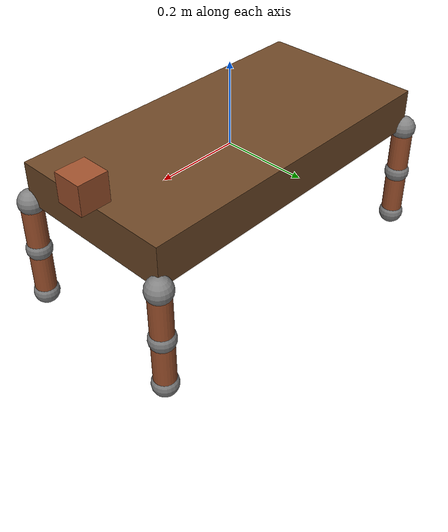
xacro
<?xml version="1.0"?>
<robot name="sample-quadruped2" xmlns:xacro="http://www.ros.org/wiki/xacro">

  <!-- Include materials -->
  <material name="TorsoBrown">
    <color rgba="0.43 0.28 0.15 1.0"/>
  </material>
  <material name="Red">
    <color rgba="0.627 0.322 0.176 1.0"/>
  </material>
  <material name="Blue">
    <color rgba="0.0 0.0 0.8 1.0"/>
  </material>
  <material name="Blue2">
    <color rgba="0.627 0.322 0.176 1.0"/>
  </material>
  <material name="Green">
    <color rgba="0.0 0.9 0.0 1.0"/>
  </material>
  <material name="Gray">
    <color rgba="0.5 0.5 0.5 1.0"/>
  </material>

  <!-- Constants -->
  <property name="M_PI" value="3.14159"/>
  <!-- Lengths for the limbs -->
  <property name="lleg1_len" value="0.125" />
  <property name="lleg2_len" value="0.125" />
  <property name="lleg_width" value="0.025" />
  <property name="lleg_ball_width" value="0.03" />
  <!-- Lengths for the torso -->
  <property name="torso_xlen" value="0.4"/>
  <property name="torso_ylen" value="0.2"/>
  <property name="torso_zlen" value="0.05"/>
  <!-- Size of the pseudo-head -->
  <property name="phead_side" value="0.07"/>

  <!--        TORAX LINK: where the arms/legs are placed            -->

  <link name="base_link" />
  <joint name="base_link_fixedjoint" type="fixed">
    <parent link="base_link"/>
    <child link="torso"/>
    <origin rpy="0 0 0" xyz="0 0 0"/>
    <axis xyz="0 0 0"/>
  </joint>

  <link name="torso">
    <visual>
      <origin xyz=" 0 0 0"  rpy="0 0 0"/>
      <geometry>
        <box size="${torso_xlen*2} ${torso_ylen*2} ${torso_zlen*2}"/>
      </geometry>
      <material name="TorsoBrown" />
    </visual>
  </link>

  <!--        SQUARE THAT INDICATES THE FRONT                       -->
  <joint name="pseudo_head_joint" type="fixed">
    <parent link="torso"/>
    <child link="pseudo_head"/>
    <origin rpy="0 0 0" xyz="${torso_xlen} 0 ${torso_zlen+phead_side/2}"/>
    <axis xyz="0 0 0"/>
  </joint>
  <link name="pseudo_head">
    <visual>
      <origin xyz="0 0 0" rpy="0 0 0" />
      <geometry>
        <box size="${phead_side} ${phead_side} ${phead_side}"/>
      </geometry>
      <material name="Red" />
    </visual>
  </link>

  <!--        FRONT RIGHT LIMB                                      -->

  <joint name="front_right_j1" type="revolute">
    <parent link="torso"/>
    <child link="lfront_right0"/>
    <origin xyz="${torso_xlen} -${torso_ylen} -${torso_zlen}" rpy="0 0 0" />
    <axis xyz="1 0 0" />
    <limit effort="300" velocity="1" lower="-1.4" upper="1.4"/>
  </joint>

  <link name="lfront_right0">
    <visual>
      <origin xyz="0 0 0" rpy="0 0 0" />
      <geometry>
        <sphere radius="${lleg_ball_width}"/>
      </geometry>
      <material name="Gray" />
    </visual>
  </link>

  <joint name="front_right_j2" type="revolute">
    <parent link="lfront_right0"/>
    <child link="lfront_right1"/>
    <origin xyz="0 0 0" rpy="0 0 0" />
    <axis xyz="0 1 0" />
    <limit effort="300" velocity="1" lower="-1.4" upper="1.4"/>
  </joint>

  <link name="lfront_right1" >
    <visual>
      <origin xyz="0 0 -${lleg1_len/2}" rpy="0 0 0" />
      <geometry>
        <cylinder radius="${lleg_width}" length="${lleg1_len}"/>
      </geometry>
      <material name="Red" />
    </visual>
  </link>

  <joint name="front_right_j3" type="revolute">
    <parent link="lfront_right1"/>
    <child link="lfront_right2"/>
    <origin xyz="0 0 -${lleg1_len}" rpy="0 0 0" />
    <axis xyz="0 1 0" />
    <limit effort="300" velocity="1" lower="-2.5" upper="2.5"/>
  </joint>

  <link name="lfront_right2" >
    <visual>
      <origin xyz="0 0 -${lleg2_len/2}" rpy="0 0 0" />
      <geometry>
        <cylinder radius="${lleg_width}" length="${lleg2_len}"/>
      </geometry>
      <material name="Blue2" />
    </visual>
  </link>

  <!-- Balls located at joint positions (only for visual purposes) -->
  <joint name="front_right1_ball_joint" type="fixed">
    <parent link="lfront_right1"/>
    <child link="lfront_right1_ball"/>
    <origin rpy="0 0 0" xyz="0 0 0"/>
    <axis xyz="0 0 0"/>
  </joint>
  <link name="lfront_right1_ball">
    <visual>
      <origin xyz="0 0 -${lleg1_len}" rpy="0 0 0" />
      <geometry>
        <sphere radius="${lleg_ball_width}"/>
      </geometry>
      <material name="Gray" />
    </visual>
  </link>

  <joint name="front_right2_ball_joint" type="fixed">
    <parent link="lfront_right2"/>
    <child link="lfront_right2_ball"/>
    <origin rpy="0 0 0" xyz="0 0 0"/>
    <axis xyz="0 0 0"/>
  </joint>
  <link name="lfront_right2_ball">
    <visual>
      <origin xyz="0 0 -${lleg2_len}" rpy="0 0 0" />
      <geometry>
        <sphere radius="${lleg_ball_width}"/>
      </geometry>
      <material name="Gray" />
    </visual>
  </link>

  <!--        FRONT LEFT LIMB                                      -->

  <joint name="front_left_j1" type="revolute">
    <parent link="torso"/>
    <child link="lfront_left0"/>
    <origin xyz="${torso_xlen} ${torso_ylen} -${torso_zlen}" rpy="0 0 0" />
    <axis xyz="1 0 0" />
    <limit effort="300" velocity="1" lower="-1.4" upper="1.4"/>
  </joint>

  <link name="lfront_left0">
    <visual>
      <origin xyz="0 0 0" rpy="0 0 0" />
      <geometry>
        <sphere radius="${lleg_ball_width}"/>
      </geometry>
      <material name="Gray" />
    </visual>
  </link>

  <joint name="front_left_j2" type="revolute">
    <parent link="lfront_left0"/>
    <child link="lfront_left1"/>
    <origin xyz="0 0 0" rpy="0 0 0" />
    <axis xyz="0 1 0" />
    <limit effort="300" velocity="1" lower="-1.4" upper="1.4"/>
  </joint>

  <link name="lfront_left1" >
    <visual>
      <origin xyz="0 0 -${lleg1_len/2}" rpy="0 0 0" />
      <geometry>
        <cylinder radius="${lleg_width}" length="${lleg1_len}"/>
      </geometry>
      <material name="Red" />
    </visual>
  </link>

  <joint name="front_left_j3" type="revolute">
    <parent link="lfront_left1"/>
    <child link="lfront_left2"/>
    <origin xyz="0 0 -${lleg1_len}" rpy="0 0 0" />
    <axis xyz="0 1 0" />
    <limit effort="300" velocity="1" lower="-2.5" upper="2.5"/>
  </joint>

  <link name="lfront_left2" >
    <visual>
      <origin xyz="0 0 -${lleg2_len/2}" rpy="0 0 0" />
      <geometry>
        <cylinder radius="${lleg_width}" length="${lleg2_len}"/>
      </geometry>
      <material name="Blue2" />
    </visual>
  </link>

  <!-- Balls located at joint positions (only for visual purposes) -->
  <joint name="front_left1_ball_joint" type="fixed">
    <parent link="lfront_left1"/>
    <child link="lfront_left1_ball"/>
    <origin rpy="0 0 0" xyz="0 0 0"/>
    <axis xyz="0 0 0"/>
  </joint>
  <link name="lfront_left1_ball">
    <visual>
      <origin xyz="0 0 -${lleg1_len}" rpy="0 0 0" />
      <geometry>
        <sphere radius="${lleg_ball_width}"/>
      </geometry>
      <material name="Gray" />
    </visual>
  </link>

  <joint name="front_left2_ball_joint" type="fixed">
    <parent link="lfront_left2"/>
    <child link="lfront_left2_ball"/>
    <origin rpy="0 0 0" xyz="0 0 0"/>
    <axis xyz="0 0 0"/>
  </joint>
  <link name="lfront_left2_ball">
    <visual>
      <origin xyz="0 0 -${lleg2_len}" rpy="0 0 0" />
      <geometry>
        <sphere radius="${lleg_ball_width}"/>
      </geometry>
      <material name="Gray" />
    </visual>
  </link>

  <!--        REAR RIGHT LIMB                                       -->

  <joint name="rear_right_j1" type="revolute">
    <parent link="torso"/>
    <child link="lrear_right0"/>
    <origin xyz="-${torso_xlen} -${torso_ylen} -${torso_zlen}" rpy="0 0 0" />
    <axis xyz="1 0 0" />
    <limit effort="300" velocity="1" lower="-1.4" upper="1.4"/>
  </joint>

  <link name="lrear_right0">
    <visual>
      <origin xyz="0 0 0" rpy="0 0 0" />
      <geometry>
        <sphere radius="${lleg_ball_width}"/>
      </geometry>
      <material name="Gray" />
    </visual>
  </link>

  <joint name="rear_right_j2" type="revolute">
    <parent link="lrear_right0"/>
    <child link="lrear_right1"/>
    <origin xyz="0 0 0" rpy="0 0 0" />
    <axis xyz="0 1 0" />
    <limit effort="300" velocity="1" lower="-1.4" upper="1.4"/>
  </joint>

  <link name="lrear_right1" >
    <visual>
      <origin xyz="0 0 -${lleg1_len/2}" rpy="0 0 0" />
      <geometry>
        <cylinder radius="${lleg_width}" length="${lleg1_len}"/>
      </geometry>
      <material name="Red" />
    </visual>
  </link>

  <joint name="rear_right_j3" type="revolute">
    <parent link="lrear_right1"/>
    <child link="lrear_right2"/>
    <origin xyz="0 0 -${lleg1_len}" rpy="0 0 0" />
    <axis xyz="0 1 0" />
    <limit effort="300" velocity="1" lower="-2.5" upper="2.5"/>
  </joint>

  <link name="lrear_right2" >
    <visual>
      <origin xyz="0 0 -${lleg2_len/2}" rpy="0 0 0" />
      <geometry>
        <cylinder radius="${lleg_width}" length="${lleg2_len}"/>
      </geometry>
      <material name="Blue2" />
    </visual>
  </link>

  <!-- Balls located at joint positions (only for visual purposes) -->
  <joint name="rear_right1_ball_joint" type="fixed">
    <parent link="lrear_right1"/>
    <child link="lrear_right1_ball"/>
    <origin rpy="0 0 0" xyz="0 0 0"/>
    <axis xyz="0 0 0"/>
  </joint>
  <link name="lrear_right1_ball">
    <visual>
      <origin xyz="0 0 -${lleg1_len}" rpy="0 0 0" />
      <geometry>
        <sphere radius="${lleg_ball_width}"/>
      </geometry>
      <material name="Gray" />
    </visual>
  </link>

  <joint name="rear_right2_ball_joint" type="fixed">
    <parent link="lrear_right2"/>
    <child link="lrear_right2_ball"/>
    <origin rpy="0 0 0" xyz="0 0 0"/>
    <axis xyz="0 0 0"/>
  </joint>
  <link name="lrear_right2_ball">
    <visual>
      <origin xyz="0 0 -${lleg2_len}" rpy="0 0 0" />
      <geometry>
        <sphere radius="${lleg_ball_width}"/>
      </geometry>
      <material name="Gray" />
    </visual>
  </link>

  <!--        REAR LEFT LIMB                                        -->

  <joint name="rear_left_j1" type="revolute">
    <parent link="torso"/>
    <child link="lrear_left0"/>
    <origin xyz="-${torso_xlen} ${torso_ylen} -${torso_zlen}" rpy="0 0 0" />
    <axis xyz="1 0 0" />
    <limit effort="300" velocity="1" lower="-1.4" upper="1.4"/>
  </joint>

  <link name="lrear_left0">
    <visual>
      <origin xyz="0 0 0" rpy="0 0 0" />
      <geometry>
        <sphere radius="${lleg_ball_width}"/>
      </geometry>
      <material name="Gray" />
    </visual>
  </link>

  <joint name="rear_left_j2" type="revolute">
    <parent link="lrear_left0"/>
    <child link="lrear_left1"/>
    <origin xyz="0 0 0" rpy="0 0 0" />
    <axis xyz="0 1 0" />
    <limit effort="300" velocity="1" lower="-1.4" upper="1.4"/>
  </joint>

  <link name="lrear_left1" >
    <visual>
      <origin xyz="0 0 -${lleg1_len/2}" rpy="0 0 0" />
      <geometry>
        <cylinder radius="${lleg_width}" length="${lleg1_len}"/>
      </geometry>
      <material name="Red" />
    </visual>
  </link>

  <joint name="rear_left_j3" type="revolute">
    <parent link="lrear_left1"/>
    <child link="lrear_left2"/>
    <origin xyz="0 0 -${lleg1_len}" rpy="0 0 0" />
    <axis xyz="0 1 0" />
    <limit effort="300" velocity="1" lower="-2.5" upper="2.5"/>
  </joint>

  <link name="lrear_left2" >
    <visual>
      <origin xyz="0 0 -${lleg2_len/2}" rpy="0 0 0" />
      <geometry>
        <cylinder radius="${lleg_width}" length="${lleg2_len}"/>
      </geometry>
      <material name="Blue2" />
    </visual>
  </link>

  <!-- Balls located at joint positions (only for visual purposes) -->
  <joint name="rear_left1_ball_joint" type="fixed">
    <parent link="lrear_left1"/>
    <child link="lrear_left1_ball"/>
    <origin rpy="0 0 0" xyz="0 0 0"/>
    <axis xyz="0 0 0"/>
  </joint>
  <link name="lrear_left1_ball">
    <visual>
      <origin xyz="0 0 -${lleg1_len}" rpy="0 0 0" />
      <geometry>
        <sphere radius="${lleg_ball_width}"/>
      </geometry>
      <material name="Gray" />
    </visual>
  </link>

  <joint name="rear_left2_ball_joint" type="fixed">
    <parent link="lrear_left2"/>
    <child link="lrear_left2_ball"/>
    <origin rpy="0 0 0" xyz="0 0 0"/>
    <axis xyz="0 0 0"/>
  </joint>
  <link name="lrear_left2_ball">
    <visual>
      <origin xyz="0 0 -${lleg2_len}" rpy="0 0 0" />
      <geometry>
        <sphere radius="${lleg_ball_width}"/>
      </geometry>
      <material name="Gray" />
    </visual>
  </link>

</robot>
